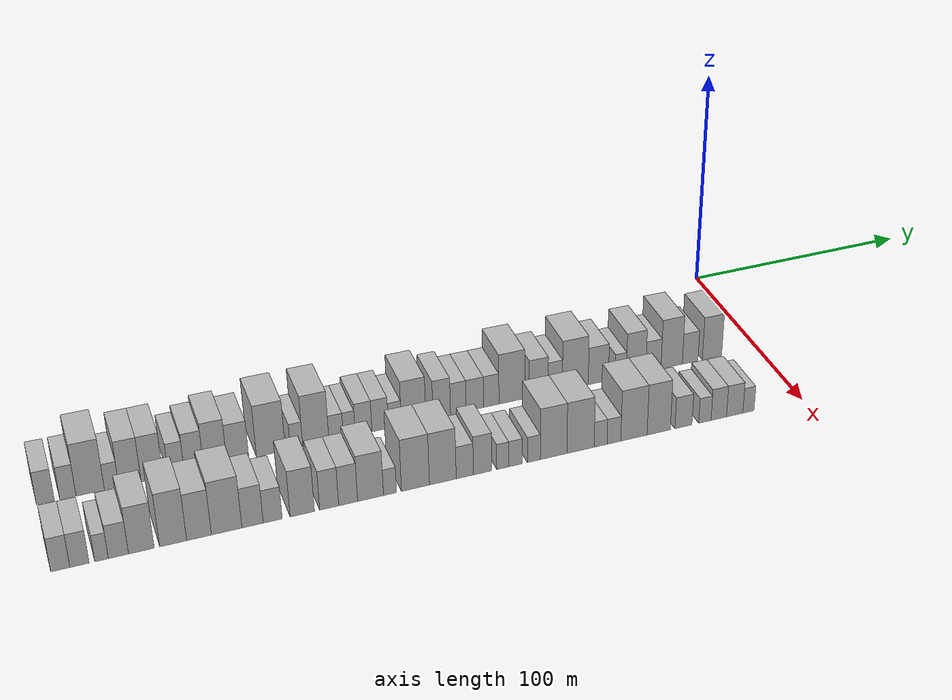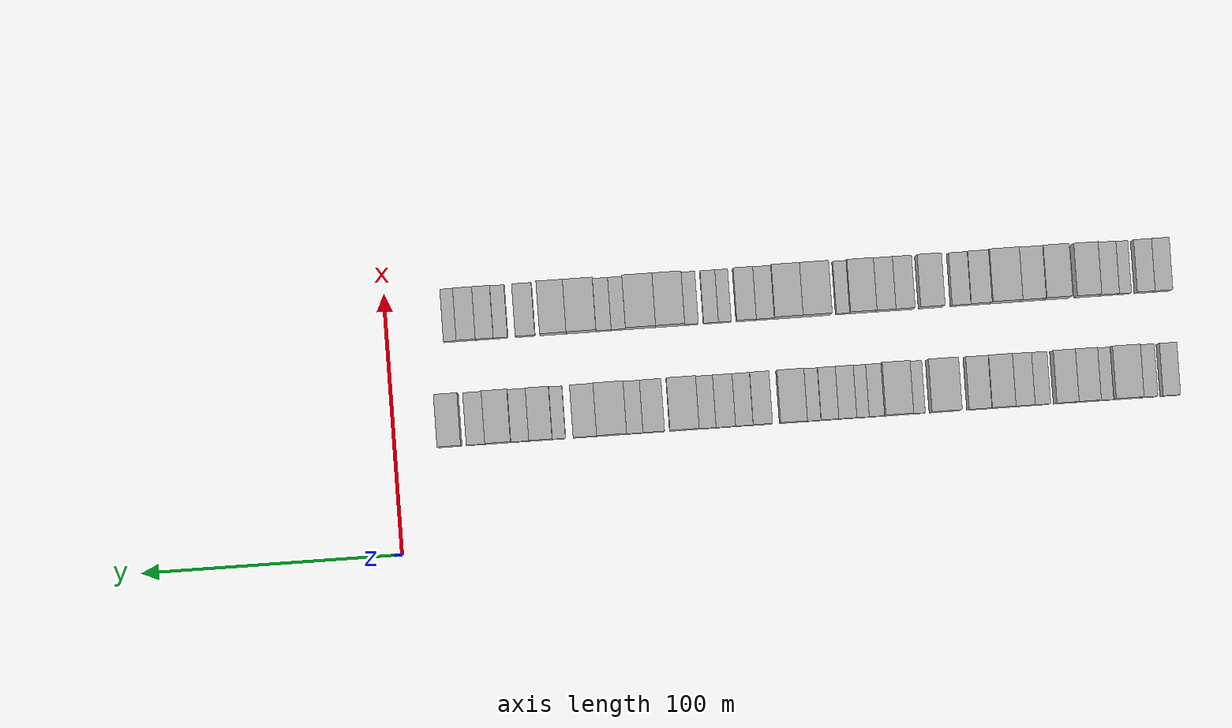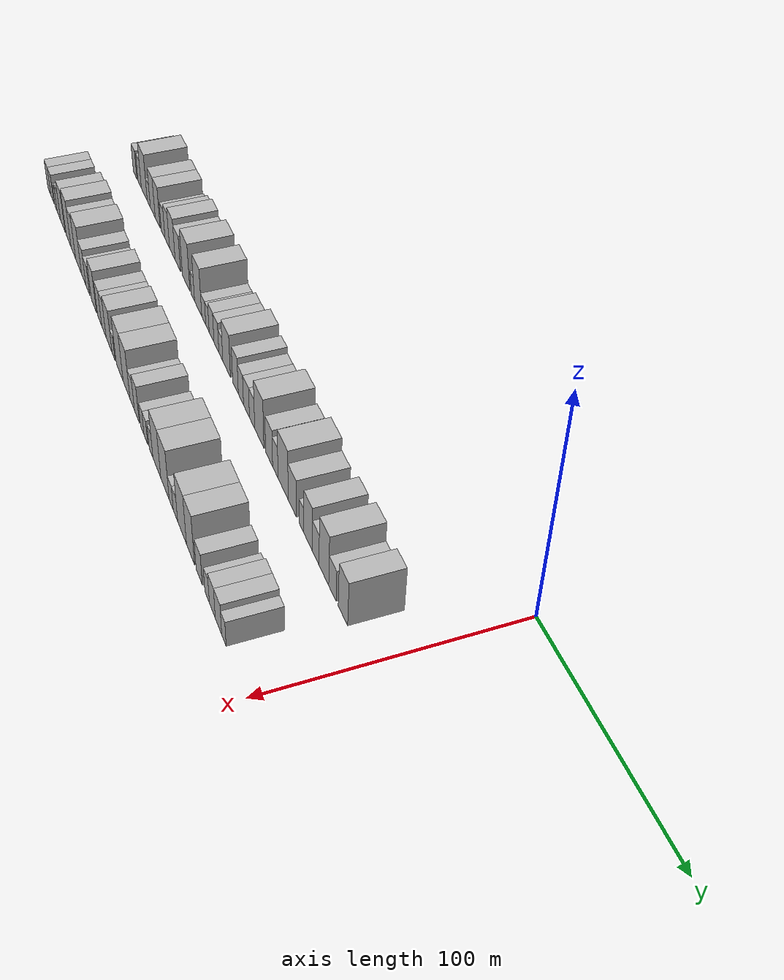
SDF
<sdf version="1.6">
 <world name="default">
  <model name="building_1">
   <static>1</static>
   <pose>50.0000 -296.6885 0 0.000000 0.000000 0.000000</pose>
   <link name="link">
    <pose>0 0 7.50 0 0 0</pose>
    <collision name="collision"><geometry><box><size>20.0000 6.6230 15.0000</size></box></geometry></collision>
    <visual name="visual">
     <cast_shadows>0</cast_shadows>
     <geometry><box><size>20.0000 6.6230 15.0000</size></box></geometry>
     <material>
      <script>
       <uri>model://HANNAS_wall/materials/scripts</uri>
       <uri>model://HANNAS_wall/materials/textures</uri>
       <name>vrc/HANNAS_wall</name>
      </script>
     </material>
    </visual>
   </link>
  </model>
  <model name="building_2">
   <static>1</static>
   <pose>50.0000 -288.3620 0 0.000000 0.000000 0.000000</pose>
   <link name="link">
    <pose>0 0 7.50 0 0 0</pose>
    <collision name="collision"><geometry><box><size>20.0000 6.0301 15.0000</size></box></geometry></collision>
    <visual name="visual">
     <cast_shadows>0</cast_shadows>
     <geometry><box><size>20.0000 6.0301 15.0000</size></box></geometry>
     <material>
      <script>
       <uri>model://HANNAS_wall/materials/scripts</uri>
       <uri>model://HANNAS_wall/materials/textures</uri>
       <name>vrc/HANNAS_wall</name>
      </script>
     </material>
    </visual>
   </link>
  </model>
  <model name="building_3">
   <static>1</static>
   <pose>50.0000 -280.0617 0 0.000000 0.000000 0.000000</pose>
   <link name="link">
    <pose>0 0 12.00 0 0 0</pose>
    <collision name="collision"><geometry><box><size>20.0000 10.5706 24.0000</size></box></geometry></collision>
    <visual name="visual">
     <cast_shadows>0</cast_shadows>
     <geometry><box><size>20.0000 10.5706 24.0000</size></box></geometry>
     <material>
      <script>
       <uri>model://HANNAS_wall/materials/scripts</uri>
       <uri>model://HANNAS_wall/materials/textures</uri>
       <name>vrc/HANNAS_wall</name>
      </script>
     </material>
    </visual>
   </link>
  </model>
  <model name="building_4">
   <static>1</static>
   <pose>50.0000 -272.0623 0 0.000000 0.000000 0.000000</pose>
   <link name="link">
    <pose>0 0 6.00 0 0 0</pose>
    <collision name="collision"><geometry><box><size>20.0000 5.4283 12.0000</size></box></geometry></collision>
    <visual name="visual">
     <cast_shadows>0</cast_shadows>
     <geometry><box><size>20.0000 5.4283 12.0000</size></box></geometry>
     <material>
      <script>
       <uri>model://HANNAS_wall/materials/scripts</uri>
       <uri>model://HANNAS_wall/materials/textures</uri>
       <name>vrc/HANNAS_wall</name>
      </script>
     </material>
    </visual>
   </link>
  </model>
  <model name="building_5">
   <static>1</static>
   <pose>50.0000 -265.1304 0 0.000000 0.000000 0.000000</pose>
   <link name="link">
    <pose>0 0 10.50 0 0 0</pose>
    <collision name="collision"><geometry><box><size>20.0000 8.4354 21.0000</size></box></geometry></collision>
    <visual name="visual">
     <cast_shadows>0</cast_shadows>
     <geometry><box><size>20.0000 8.4354 21.0000</size></box></geometry>
     <material>
      <script>
       <uri>model://HANNAS_wall/materials/scripts</uri>
       <uri>model://HANNAS_wall/materials/textures</uri>
       <name>vrc/HANNAS_wall</name>
      </script>
     </material>
    </visual>
   </link>
  </model>
  <model name="building_6">
   <static>1</static>
   <pose>50.0000 -256.7108 0 0.000000 0.000000 0.000000</pose>
   <link name="link">
    <pose>0 0 10.50 0 0 0</pose>
    <collision name="collision"><geometry><box><size>20.0000 8.4038 21.0000</size></box></geometry></collision>
    <visual name="visual">
     <cast_shadows>0</cast_shadows>
     <geometry><box><size>20.0000 8.4038 21.0000</size></box></geometry>
     <material>
      <script>
       <uri>model://HANNAS_wall/materials/scripts</uri>
       <uri>model://HANNAS_wall/materials/textures</uri>
       <name>vrc/HANNAS_wall</name>
      </script>
     </material>
    </visual>
   </link>
  </model>
  <model name="building_7">
   <static>1</static>
   <pose>50.0000 -247.4542 0 0.000000 0.000000 0.000000</pose>
   <link name="link">
    <pose>0 0 7.50 0 0 0</pose>
    <collision name="collision"><geometry><box><size>20.0000 6.1095 15.0000</size></box></geometry></collision>
    <visual name="visual">
     <cast_shadows>0</cast_shadows>
     <geometry><box><size>20.0000 6.1095 15.0000</size></box></geometry>
     <material>
      <script>
       <uri>model://HANNAS_wall/materials/scripts</uri>
       <uri>model://HANNAS_wall/materials/textures</uri>
       <name>vrc/HANNAS_wall</name>
      </script>
     </material>
    </visual>
   </link>
  </model>
  <model name="building_8">
   <static>1</static>
   <pose>50.0000 -240.6647 0 0.000000 0.000000 0.000000</pose>
   <link name="link">
    <pose>0 0 9.00 0 0 0</pose>
    <collision name="collision"><geometry><box><size>20.0000 7.4693 18.0000</size></box></geometry></collision>
    <visual name="visual">
     <cast_shadows>0</cast_shadows>
     <geometry><box><size>20.0000 7.4693 18.0000</size></box></geometry>
     <material>
      <script>
       <uri>model://HANNAS_wall/materials/scripts</uri>
       <uri>model://HANNAS_wall/materials/textures</uri>
       <name>vrc/HANNAS_wall</name>
      </script>
     </material>
    </visual>
   </link>
  </model>
  <model name="building_9">
   <static>1</static>
   <pose>50.0000 -232.4220 0 0.000000 0.000000 0.000000</pose>
   <link name="link">
    <pose>0 0 10.50 0 0 0</pose>
    <collision name="collision"><geometry><box><size>20.0000 9.0161 21.0000</size></box></geometry></collision>
    <visual name="visual">
     <cast_shadows>0</cast_shadows>
     <geometry><box><size>20.0000 9.0161 21.0000</size></box></geometry>
     <material>
      <script>
       <uri>model://HANNAS_wall/materials/scripts</uri>
       <uri>model://HANNAS_wall/materials/textures</uri>
       <name>vrc/HANNAS_wall</name>
      </script>
     </material>
    </visual>
   </link>
  </model>
  <model name="building_10">
   <static>1</static>
   <pose>50.0000 -223.6112 0 0.000000 0.000000 0.000000</pose>
   <link name="link">
    <pose>0 0 9.00 0 0 0</pose>
    <collision name="collision"><geometry><box><size>20.0000 8.6056 18.0000</size></box></geometry></collision>
    <visual name="visual">
     <cast_shadows>0</cast_shadows>
     <geometry><box><size>20.0000 8.6056 18.0000</size></box></geometry>
     <material>
      <script>
       <uri>model://HANNAS_wall/materials/scripts</uri>
       <uri>model://HANNAS_wall/materials/textures</uri>
       <name>vrc/HANNAS_wall</name>
      </script>
     </material>
    </visual>
   </link>
  </model>
  <model name="building_11">
   <static>1</static>
   <pose>50.0000 -210.5880 0 0.000000 0.000000 0.000000</pose>
   <link name="link">
    <pose>0 0 12.00 0 0 0</pose>
    <collision name="collision"><geometry><box><size>20.0000 11.4408 24.0000</size></box></geometry></collision>
    <visual name="visual">
     <cast_shadows>0</cast_shadows>
     <geometry><box><size>20.0000 11.4408 24.0000</size></box></geometry>
     <material>
      <script>
       <uri>model://HANNAS_wall/materials/scripts</uri>
       <uri>model://HANNAS_wall/materials/textures</uri>
       <name>vrc/HANNAS_wall</name>
      </script>
     </material>
    </visual>
   </link>
  </model>
  <model name="building_12">
   <static>1</static>
   <pose>50.0000 -200.3734 0 0.000000 0.000000 0.000000</pose>
   <link name="link">
    <pose>0 0 6.00 0 0 0</pose>
    <collision name="collision"><geometry><box><size>20.0000 4.9884 12.0000</size></box></geometry></collision>
    <visual name="visual">
     <cast_shadows>0</cast_shadows>
     <geometry><box><size>20.0000 4.9884 12.0000</size></box></geometry>
     <material>
      <script>
       <uri>model://HANNAS_wall/materials/scripts</uri>
       <uri>model://HANNAS_wall/materials/textures</uri>
       <name>vrc/HANNAS_wall</name>
      </script>
     </material>
    </visual>
   </link>
  </model>
  <model name="building_13">
   <static>1</static>
   <pose>50.0000 -192.5975 0 0.000000 0.000000 0.000000</pose>
   <link name="link">
    <pose>0 0 12.00 0 0 0</pose>
    <collision name="collision"><geometry><box><size>20.0000 10.5634 24.0000</size></box></geometry></collision>
    <visual name="visual">
     <cast_shadows>0</cast_shadows>
     <geometry><box><size>20.0000 10.5634 24.0000</size></box></geometry>
     <material>
      <script>
       <uri>model://HANNAS_wall/materials/scripts</uri>
       <uri>model://HANNAS_wall/materials/textures</uri>
       <name>vrc/HANNAS_wall</name>
      </script>
     </material>
    </visual>
   </link>
  </model>
  <model name="building_14">
   <static>1</static>
   <pose>50.0000 -184.3863 0 0.000000 0.000000 0.000000</pose>
   <link name="link">
    <pose>0 0 6.00 0 0 0</pose>
    <collision name="collision"><geometry><box><size>20.0000 5.8589 12.0000</size></box></geometry></collision>
    <visual name="visual">
     <cast_shadows>0</cast_shadows>
     <geometry><box><size>20.0000 5.8589 12.0000</size></box></geometry>
     <material>
      <script>
       <uri>model://HANNAS_wall/materials/scripts</uri>
       <uri>model://HANNAS_wall/materials/textures</uri>
       <name>vrc/HANNAS_wall</name>
      </script>
     </material>
    </visual>
   </link>
  </model>
  <model name="building_15">
   <static>1</static>
   <pose>50.0000 -179.0469 0 0.000000 0.000000 0.000000</pose>
   <link name="link">
    <pose>0 0 6.00 0 0 0</pose>
    <collision name="collision"><geometry><box><size>20.0000 4.8199 12.0000</size></box></geometry></collision>
    <visual name="visual">
     <cast_shadows>0</cast_shadows>
     <geometry><box><size>20.0000 4.8199 12.0000</size></box></geometry>
     <material>
      <script>
       <uri>model://HANNAS_wall/materials/scripts</uri>
       <uri>model://HANNAS_wall/materials/textures</uri>
       <name>vrc/HANNAS_wall</name>
      </script>
     </material>
    </visual>
   </link>
  </model>
  <model name="building_16">
   <static>1</static>
   <pose>50.0000 -173.2022 0 0.000000 0.000000 0.000000</pose>
   <link name="link">
    <pose>0 0 7.50 0 0 0</pose>
    <collision name="collision"><geometry><box><size>20.0000 6.8695 15.0000</size></box></geometry></collision>
    <visual name="visual">
     <cast_shadows>0</cast_shadows>
     <geometry><box><size>20.0000 6.8695 15.0000</size></box></geometry>
     <material>
      <script>
       <uri>model://HANNAS_wall/materials/scripts</uri>
       <uri>model://HANNAS_wall/materials/textures</uri>
       <name>vrc/HANNAS_wall</name>
      </script>
     </material>
    </visual>
   </link>
  </model>
  <model name="building_17">
   <static>1</static>
   <pose>50.0000 -166.3987 0 0.000000 0.000000 0.000000</pose>
   <link name="link">
    <pose>0 0 7.50 0 0 0</pose>
    <collision name="collision"><geometry><box><size>20.0000 6.7375 15.0000</size></box></geometry></collision>
    <visual name="visual">
     <cast_shadows>0</cast_shadows>
     <geometry><box><size>20.0000 6.7375 15.0000</size></box></geometry>
     <material>
      <script>
       <uri>model://HANNAS_wall/materials/scripts</uri>
       <uri>model://HANNAS_wall/materials/textures</uri>
       <name>vrc/HANNAS_wall</name>
      </script>
     </material>
    </visual>
   </link>
  </model>
  <model name="building_18">
   <static>1</static>
   <pose>50.0000 -160.3382 0 0.000000 0.000000 0.000000</pose>
   <link name="link">
    <pose>0 0 6.00 0 0 0</pose>
    <collision name="collision"><geometry><box><size>20.0000 5.3836 12.0000</size></box></geometry></collision>
    <visual name="visual">
     <cast_shadows>0</cast_shadows>
     <geometry><box><size>20.0000 5.3836 12.0000</size></box></geometry>
     <material>
      <script>
       <uri>model://HANNAS_wall/materials/scripts</uri>
       <uri>model://HANNAS_wall/materials/textures</uri>
       <name>vrc/HANNAS_wall</name>
      </script>
     </material>
    </visual>
   </link>
  </model>
  <model name="building_19">
   <static>1</static>
   <pose>50.0000 -152.5379 0 0.000000 0.000000 0.000000</pose>
   <link name="link">
    <pose>0 0 10.50 0 0 0</pose>
    <collision name="collision"><geometry><box><size>20.0000 10.2169 21.0000</size></box></geometry></collision>
    <visual name="visual">
     <cast_shadows>0</cast_shadows>
     <geometry><box><size>20.0000 10.2169 21.0000</size></box></geometry>
     <material>
      <script>
       <uri>model://HANNAS_wall/materials/scripts</uri>
       <uri>model://HANNAS_wall/materials/textures</uri>
       <name>vrc/HANNAS_wall</name>
      </script>
     </material>
    </visual>
   </link>
  </model>
  <model name="building_20">
   <static>1</static>
   <pose>50.0000 -140.7520 0 0.000000 0.000000 0.000000</pose>
   <link name="link">
    <pose>0 0 9.00 0 0 0</pose>
    <collision name="collision"><geometry><box><size>20.0000 7.3550 18.0000</size></box></geometry></collision>
    <visual name="visual">
     <cast_shadows>0</cast_shadows>
     <geometry><box><size>20.0000 7.3550 18.0000</size></box></geometry>
     <material>
      <script>
       <uri>model://HANNAS_wall/materials/scripts</uri>
       <uri>model://HANNAS_wall/materials/textures</uri>
       <name>vrc/HANNAS_wall</name>
      </script>
     </material>
    </visual>
   </link>
  </model>
  <model name="building_21">
   <static>1</static>
   <pose>50.0000 -133.7475 0 0.000000 0.000000 0.000000</pose>
   <link name="link">
    <pose>0 0 7.50 0 0 0</pose>
    <collision name="collision"><geometry><box><size>20.0000 6.6540 15.0000</size></box></geometry></collision>
    <visual name="visual">
     <cast_shadows>0</cast_shadows>
     <geometry><box><size>20.0000 6.6540 15.0000</size></box></geometry>
     <material>
      <script>
       <uri>model://HANNAS_wall/materials/scripts</uri>
       <uri>model://HANNAS_wall/materials/textures</uri>
       <name>vrc/HANNAS_wall</name>
      </script>
     </material>
    </visual>
   </link>
  </model>
  <model name="building_22">
   <static>1</static>
   <pose>50.0000 -126.6959 0 0.000000 0.000000 0.000000</pose>
   <link name="link">
    <pose>0 0 7.50 0 0 0</pose>
    <collision name="collision"><geometry><box><size>20.0000 7.4490 15.0000</size></box></geometry></collision>
    <visual name="visual">
     <cast_shadows>0</cast_shadows>
     <geometry><box><size>20.0000 7.4490 15.0000</size></box></geometry>
     <material>
      <script>
       <uri>model://HANNAS_wall/materials/scripts</uri>
       <uri>model://HANNAS_wall/materials/textures</uri>
       <name>vrc/HANNAS_wall</name>
      </script>
     </material>
    </visual>
   </link>
  </model>
  <model name="building_23">
   <static>1</static>
   <pose>50.0000 -119.7036 0 0.000000 0.000000 0.000000</pose>
   <link name="link">
    <pose>0 0 7.50 0 0 0</pose>
    <collision name="collision"><geometry><box><size>20.0000 6.5356 15.0000</size></box></geometry></collision>
    <visual name="visual">
     <cast_shadows>0</cast_shadows>
     <geometry><box><size>20.0000 6.5356 15.0000</size></box></geometry>
     <material>
      <script>
       <uri>model://HANNAS_wall/materials/scripts</uri>
       <uri>model://HANNAS_wall/materials/textures</uri>
       <name>vrc/HANNAS_wall</name>
      </script>
     </material>
    </visual>
   </link>
  </model>
  <model name="building_24">
   <static>1</static>
   <pose>50.0000 -110.8735 0 0.000000 0.000000 0.000000</pose>
   <link name="link">
    <pose>0 0 12.00 0 0 0</pose>
    <collision name="collision"><geometry><box><size>20.0000 11.1247 24.0000</size></box></geometry></collision>
    <visual name="visual">
     <cast_shadows>0</cast_shadows>
     <geometry><box><size>20.0000 11.1247 24.0000</size></box></geometry>
     <material>
      <script>
       <uri>model://HANNAS_wall/materials/scripts</uri>
       <uri>model://HANNAS_wall/materials/textures</uri>
       <name>vrc/HANNAS_wall</name>
      </script>
     </material>
    </visual>
   </link>
  </model>
  <model name="building_25">
   <static>1</static>
   <pose>50.0000 -99.2027 0 0.000000 0.000000 0.000000</pose>
   <link name="link">
    <pose>0 0 9.00 0 0 0</pose>
    <collision name="collision"><geometry><box><size>20.0000 8.2169 18.0000</size></box></geometry></collision>
    <visual name="visual">
     <cast_shadows>0</cast_shadows>
     <geometry><box><size>20.0000 8.2169 18.0000</size></box></geometry>
     <material>
      <script>
       <uri>model://HANNAS_wall/materials/scripts</uri>
       <uri>model://HANNAS_wall/materials/textures</uri>
       <name>vrc/HANNAS_wall</name>
      </script>
     </material>
    </visual>
   </link>
  </model>
  <model name="building_26">
   <static>1</static>
   <pose>50.0000 -91.9882 0 0.000000 0.000000 0.000000</pose>
   <link name="link">
    <pose>0 0 7.50 0 0 0</pose>
    <collision name="collision"><geometry><box><size>20.0000 6.2121 15.0000</size></box></geometry></collision>
    <visual name="visual">
     <cast_shadows>0</cast_shadows>
     <geometry><box><size>20.0000 6.2121 15.0000</size></box></geometry>
     <material>
      <script>
       <uri>model://HANNAS_wall/materials/scripts</uri>
       <uri>model://HANNAS_wall/materials/textures</uri>
       <name>vrc/HANNAS_wall</name>
      </script>
     </material>
    </visual>
   </link>
  </model>
  <model name="building_27">
   <static>1</static>
   <pose>50.0000 -83.1758 0 0.000000 0.000000 0.000000</pose>
   <link name="link">
    <pose>0 0 12.00 0 0 0</pose>
    <collision name="collision"><geometry><box><size>20.0000 11.4127 24.0000</size></box></geometry></collision>
    <visual name="visual">
     <cast_shadows>0</cast_shadows>
     <geometry><box><size>20.0000 11.4127 24.0000</size></box></geometry>
     <material>
      <script>
       <uri>model://HANNAS_wall/materials/scripts</uri>
       <uri>model://HANNAS_wall/materials/textures</uri>
       <name>vrc/HANNAS_wall</name>
      </script>
     </material>
    </visual>
   </link>
  </model>
  <model name="building_28">
   <static>1</static>
   <pose>50.0000 -72.9829 0 0.000000 0.000000 0.000000</pose>
   <link name="link">
    <pose>0 0 9.00 0 0 0</pose>
    <collision name="collision"><geometry><box><size>20.0000 8.9731 18.0000</size></box></geometry></collision>
    <visual name="visual">
     <cast_shadows>0</cast_shadows>
     <geometry><box><size>20.0000 8.9731 18.0000</size></box></geometry>
     <material>
      <script>
       <uri>model://HANNAS_wall/materials/scripts</uri>
       <uri>model://HANNAS_wall/materials/textures</uri>
       <name>vrc/HANNAS_wall</name>
      </script>
     </material>
    </visual>
   </link>
  </model>
  <model name="building_29">
   <static>1</static>
   <pose>50.0000 -63.0117 0 0.000000 0.000000 0.000000</pose>
   <link name="link">
    <pose>0 0 6.00 0 0 0</pose>
    <collision name="collision"><geometry><box><size>20.0000 4.9692 12.0000</size></box></geometry></collision>
    <visual name="visual">
     <cast_shadows>0</cast_shadows>
     <geometry><box><size>20.0000 4.9692 12.0000</size></box></geometry>
     <material>
      <script>
       <uri>model://HANNAS_wall/materials/scripts</uri>
       <uri>model://HANNAS_wall/materials/textures</uri>
       <name>vrc/HANNAS_wall</name>
      </script>
     </material>
    </visual>
   </link>
  </model>
  <model name="building_30">
   <static>1</static>
   <pose>50.0000 -56.1043 0 0.000000 0.000000 0.000000</pose>
   <link name="link">
    <pose>0 0 10.50 0 0 0</pose>
    <collision name="collision"><geometry><box><size>20.0000 8.8454 21.0000</size></box></geometry></collision>
    <visual name="visual">
     <cast_shadows>0</cast_shadows>
     <geometry><box><size>20.0000 8.8454 21.0000</size></box></geometry>
     <material>
      <script>
       <uri>model://HANNAS_wall/materials/scripts</uri>
       <uri>model://HANNAS_wall/materials/textures</uri>
       <name>vrc/HANNAS_wall</name>
      </script>
     </material>
    </visual>
   </link>
  </model>
  <model name="building_31">
   <static>1</static>
   <pose>50.0000 -48.2163 0 0.000000 0.000000 0.000000</pose>
   <link name="link">
    <pose>0 0 7.50 0 0 0</pose>
    <collision name="collision"><geometry><box><size>20.0000 6.9306 15.0000</size></box></geometry></collision>
    <visual name="visual">
     <cast_shadows>0</cast_shadows>
     <geometry><box><size>20.0000 6.9306 15.0000</size></box></geometry>
     <material>
      <script>
       <uri>model://HANNAS_wall/materials/scripts</uri>
       <uri>model://HANNAS_wall/materials/textures</uri>
       <name>vrc/HANNAS_wall</name>
      </script>
     </material>
    </visual>
   </link>
  </model>
  <model name="building_32">
   <static>1</static>
   <pose>50.0000 -39.8728 0 0.000000 0.000000 0.000000</pose>
   <link name="link">
    <pose>0 0 12.00 0 0 0</pose>
    <collision name="collision"><geometry><box><size>20.0000 9.7566 24.0000</size></box></geometry></collision>
    <visual name="visual">
     <cast_shadows>0</cast_shadows>
     <geometry><box><size>20.0000 9.7566 24.0000</size></box></geometry>
     <material>
      <script>
       <uri>model://HANNAS_wall/materials/scripts</uri>
       <uri>model://HANNAS_wall/materials/textures</uri>
       <name>vrc/HANNAS_wall</name>
      </script>
     </material>
    </visual>
   </link>
  </model>
  <model name="building_33">
   <static>1</static>
   <pose>50.0000 -31.3710 0 0.000000 0.000000 0.000000</pose>
   <link name="link">
    <pose>0 0 7.50 0 0 0</pose>
    <collision name="collision"><geometry><box><size>20.0000 7.2471 15.0000</size></box></geometry></collision>
    <visual name="visual">
     <cast_shadows>0</cast_shadows>
     <geometry><box><size>20.0000 7.2471 15.0000</size></box></geometry>
     <material>
      <script>
       <uri>model://HANNAS_wall/materials/scripts</uri>
       <uri>model://HANNAS_wall/materials/textures</uri>
       <name>vrc/HANNAS_wall</name>
      </script>
     </material>
    </visual>
   </link>
  </model>
  <model name="building_34">
   <static>1</static>
   <pose>50.0000 -21.2676 0 0.000000 0.000000 0.000000</pose>
   <link name="link">
    <pose>0 0 10.50 0 0 0</pose>
    <collision name="collision"><geometry><box><size>20.0000 8.9597 21.0000</size></box></geometry></collision>
    <visual name="visual">
     <cast_shadows>0</cast_shadows>
     <geometry><box><size>20.0000 8.9597 21.0000</size></box></geometry>
     <material>
      <script>
       <uri>model://HANNAS_wall/materials/scripts</uri>
       <uri>model://HANNAS_wall/materials/textures</uri>
       <name>vrc/HANNAS_wall</name>
      </script>
     </material>
    </visual>
   </link>
  </model>
  <model name="building_70">
   <static>1</static>
   <pose>90.0000 -296.6307 0 0.000000 0.000000 0.000000</pose>
   <link name="link">
    <pose>0 0 7.50 0 0 0</pose>
    <collision name="collision"><geometry><box><size>20.0000 6.7386 15.0000</size></box></geometry></collision>
    <visual name="visual">
     <cast_shadows>0</cast_shadows>
     <geometry><box><size>20.0000 6.7386 15.0000</size></box></geometry>
     <material>
      <script>
       <uri>model://HANNAS_wall/materials/scripts</uri>
       <uri>model://HANNAS_wall/materials/textures</uri>
       <name>vrc/HANNAS_wall</name>
      </script>
     </material>
    </visual>
   </link>
  </model>
  <model name="building_71">
   <static>1</static>
   <pose>90.0000 -289.8558 0 0.000000 0.000000 0.000000</pose>
   <link name="link">
    <pose>0 0 7.50 0 0 0</pose>
    <collision name="collision"><geometry><box><size>20.0000 6.8113 15.0000</size></box></geometry></collision>
    <visual name="visual">
     <cast_shadows>0</cast_shadows>
     <geometry><box><size>20.0000 6.8113 15.0000</size></box></geometry>
     <material>
      <script>
       <uri>model://HANNAS_wall/materials/scripts</uri>
       <uri>model://HANNAS_wall/materials/textures</uri>
       <name>vrc/HANNAS_wall</name>
      </script>
     </material>
    </visual>
   </link>
  </model>
  <model name="building_72">
   <static>1</static>
   <pose>90.0000 -282.0487 0 0.000000 0.000000 0.000000</pose>
   <link name="link">
    <pose>0 0 6.00 0 0 0</pose>
    <collision name="collision"><geometry><box><size>20.0000 4.8029 12.0000</size></box></geometry></collision>
    <visual name="visual">
     <cast_shadows>0</cast_shadows>
     <geometry><box><size>20.0000 4.8029 12.0000</size></box></geometry>
     <material>
      <script>
       <uri>model://HANNAS_wall/materials/scripts</uri>
       <uri>model://HANNAS_wall/materials/textures</uri>
       <name>vrc/HANNAS_wall</name>
      </script>
     </material>
    </visual>
   </link>
  </model>
  <model name="building_73">
   <static>1</static>
   <pose>90.0000 -276.0375 0 0.000000 0.000000 0.000000</pose>
   <link name="link">
    <pose>0 0 7.50 0 0 0</pose>
    <collision name="collision"><geometry><box><size>20.0000 7.2195 15.0000</size></box></geometry></collision>
    <visual name="visual">
     <cast_shadows>0</cast_shadows>
     <geometry><box><size>20.0000 7.2195 15.0000</size></box></geometry>
     <material>
      <script>
       <uri>model://HANNAS_wall/materials/scripts</uri>
       <uri>model://HANNAS_wall/materials/textures</uri>
       <name>vrc/HANNAS_wall</name>
      </script>
     </material>
    </visual>
   </link>
  </model>
  <model name="building_74">
   <static>1</static>
   <pose>90.0000 -267.8022 0 0.000000 0.000000 0.000000</pose>
   <link name="link">
    <pose>0 0 10.50 0 0 0</pose>
    <collision name="collision"><geometry><box><size>20.0000 9.2510 21.0000</size></box></geometry></collision>
    <visual name="visual">
     <cast_shadows>0</cast_shadows>
     <geometry><box><size>20.0000 9.2510 21.0000</size></box></geometry>
     <material>
      <script>
       <uri>model://HANNAS_wall/materials/scripts</uri>
       <uri>model://HANNAS_wall/materials/textures</uri>
       <name>vrc/HANNAS_wall</name>
      </script>
     </material>
    </visual>
   </link>
  </model>
  <model name="building_75">
   <static>1</static>
   <pose>90.0000 -256.2626 0 0.000000 0.000000 0.000000</pose>
   <link name="link">
    <pose>0 0 12.00 0 0 0</pose>
    <collision name="collision"><geometry><box><size>20.0000 9.8283 24.0000</size></box></geometry></collision>
    <visual name="visual">
     <cast_shadows>0</cast_shadows>
     <geometry><box><size>20.0000 9.8283 24.0000</size></box></geometry>
     <material>
      <script>
       <uri>model://HANNAS_wall/materials/scripts</uri>
       <uri>model://HANNAS_wall/materials/textures</uri>
       <name>vrc/HANNAS_wall</name>
      </script>
     </material>
    </visual>
   </link>
  </model>
  <model name="building_76">
   <static>1</static>
   <pose>90.0000 -246.8110 0 0.000000 0.000000 0.000000</pose>
   <link name="link">
    <pose>0 0 10.50 0 0 0</pose>
    <collision name="collision"><geometry><box><size>20.0000 9.0748 21.0000</size></box></geometry></collision>
    <visual name="visual">
     <cast_shadows>0</cast_shadows>
     <geometry><box><size>20.0000 9.0748 21.0000</size></box></geometry>
     <material>
      <script>
       <uri>model://HANNAS_wall/materials/scripts</uri>
       <uri>model://HANNAS_wall/materials/textures</uri>
       <name>vrc/HANNAS_wall</name>
      </script>
     </material>
    </visual>
   </link>
  </model>
  <model name="building_77">
   <static>1</static>
   <pose>90.0000 -236.6115 0 0.000000 0.000000 0.000000</pose>
   <link name="link">
    <pose>0 0 12.00 0 0 0</pose>
    <collision name="collision"><geometry><box><size>20.0000 11.3241 24.0000</size></box></geometry></collision>
    <visual name="visual">
     <cast_shadows>0</cast_shadows>
     <geometry><box><size>20.0000 11.3241 24.0000</size></box></geometry>
     <material>
      <script>
       <uri>model://HANNAS_wall/materials/scripts</uri>
       <uri>model://HANNAS_wall/materials/textures</uri>
       <name>vrc/HANNAS_wall</name>
      </script>
     </material>
    </visual>
   </link>
  </model>
  <model name="building_78">
   <static>1</static>
   <pose>90.0000 -226.9685 0 0.000000 0.000000 0.000000</pose>
   <link name="link">
    <pose>0 0 9.00 0 0 0</pose>
    <collision name="collision"><geometry><box><size>20.0000 7.9618 18.0000</size></box></geometry></collision>
    <visual name="visual">
     <cast_shadows>0</cast_shadows>
     <geometry><box><size>20.0000 7.9618 18.0000</size></box></geometry>
     <material>
      <script>
       <uri>model://HANNAS_wall/materials/scripts</uri>
       <uri>model://HANNAS_wall/materials/textures</uri>
       <name>vrc/HANNAS_wall</name>
      </script>
     </material>
    </visual>
   </link>
  </model>
  <model name="building_79">
   <static>1</static>
   <pose>90.0000 -219.4163 0 0.000000 0.000000 0.000000</pose>
   <link name="link">
    <pose>0 0 7.50 0 0 0</pose>
    <collision name="collision"><geometry><box><size>20.0000 7.1426 15.0000</size></box></geometry></collision>
    <visual name="visual">
     <cast_shadows>0</cast_shadows>
     <geometry><box><size>20.0000 7.1426 15.0000</size></box></geometry>
     <material>
      <script>
       <uri>model://HANNAS_wall/materials/scripts</uri>
       <uri>model://HANNAS_wall/materials/textures</uri>
       <name>vrc/HANNAS_wall</name>
      </script>
     </material>
    </visual>
   </link>
  </model>
  <model name="building_80">
   <static>1</static>
   <pose>90.0000 -208.2150 0 0.000000 0.000000 0.000000</pose>
   <link name="link">
    <pose>0 0 10.50 0 0 0</pose>
    <collision name="collision"><geometry><box><size>20.0000 9.2599 21.0000</size></box></geometry></collision>
    <visual name="visual">
     <cast_shadows>0</cast_shadows>
     <geometry><box><size>20.0000 9.2599 21.0000</size></box></geometry>
     <material>
      <script>
       <uri>model://HANNAS_wall/materials/scripts</uri>
       <uri>model://HANNAS_wall/materials/textures</uri>
       <name>vrc/HANNAS_wall</name>
      </script>
     </material>
    </visual>
   </link>
  </model>
  <model name="building_81">
   <static>1</static>
   <pose>90.0000 -197.9384 0 0.000000 0.000000 0.000000</pose>
   <link name="link">
    <pose>0 0 9.00 0 0 0</pose>
    <collision name="collision"><geometry><box><size>20.0000 7.2932 18.0000</size></box></geometry></collision>
    <visual name="visual">
     <cast_shadows>0</cast_shadows>
     <geometry><box><size>20.0000 7.2932 18.0000</size></box></geometry>
     <material>
      <script>
       <uri>model://HANNAS_wall/materials/scripts</uri>
       <uri>model://HANNAS_wall/materials/textures</uri>
       <name>vrc/HANNAS_wall</name>
      </script>
     </material>
    </visual>
   </link>
  </model>
  <model name="building_82">
   <static>1</static>
   <pose>90.0000 -190.6180 0 0.000000 0.000000 0.000000</pose>
   <link name="link">
    <pose>0 0 9.00 0 0 0</pose>
    <collision name="collision"><geometry><box><size>20.0000 7.3476 18.0000</size></box></geometry></collision>
    <visual name="visual">
     <cast_shadows>0</cast_shadows>
     <geometry><box><size>20.0000 7.3476 18.0000</size></box></geometry>
     <material>
      <script>
       <uri>model://HANNAS_wall/materials/scripts</uri>
       <uri>model://HANNAS_wall/materials/textures</uri>
       <name>vrc/HANNAS_wall</name>
      </script>
     </material>
    </visual>
   </link>
  </model>
  <model name="building_83">
   <static>1</static>
   <pose>90.0000 -181.9097 0 0.000000 0.000000 0.000000</pose>
   <link name="link">
    <pose>0 0 10.50 0 0 0</pose>
    <collision name="collision"><geometry><box><size>20.0000 10.0691 21.0000</size></box></geometry></collision>
    <visual name="visual">
     <cast_shadows>0</cast_shadows>
     <geometry><box><size>20.0000 10.0691 21.0000</size></box></geometry>
     <material>
      <script>
       <uri>model://HANNAS_wall/materials/scripts</uri>
       <uri>model://HANNAS_wall/materials/textures</uri>
       <name>vrc/HANNAS_wall</name>
      </script>
     </material>
    </visual>
   </link>
  </model>
  <model name="building_84">
   <static>1</static>
   <pose>90.0000 -174.3367 0 0.000000 0.000000 0.000000</pose>
   <link name="link">
    <pose>0 0 6.00 0 0 0</pose>
    <collision name="collision"><geometry><box><size>20.0000 5.0769 12.0000</size></box></geometry></collision>
    <visual name="visual">
     <cast_shadows>0</cast_shadows>
     <geometry><box><size>20.0000 5.0769 12.0000</size></box></geometry>
     <material>
      <script>
       <uri>model://HANNAS_wall/materials/scripts</uri>
       <uri>model://HANNAS_wall/materials/textures</uri>
       <name>vrc/HANNAS_wall</name>
      </script>
     </material>
    </visual>
   </link>
  </model>
  <model name="building_85">
   <static>1</static>
   <pose>90.0000 -164.2686 0 0.000000 0.000000 0.000000</pose>
   <link name="link">
    <pose>0 0 12.00 0 0 0</pose>
    <collision name="collision"><geometry><box><size>20.0000 11.0592 24.0000</size></box></geometry></collision>
    <visual name="visual">
     <cast_shadows>0</cast_shadows>
     <geometry><box><size>20.0000 11.0592 24.0000</size></box></geometry>
     <material>
      <script>
       <uri>model://HANNAS_wall/materials/scripts</uri>
       <uri>model://HANNAS_wall/materials/textures</uri>
       <name>vrc/HANNAS_wall</name>
      </script>
     </material>
    </visual>
   </link>
  </model>
  <model name="building_86">
   <static>1</static>
   <pose>90.0000 -153.3860 0 0.000000 0.000000 0.000000</pose>
   <link name="link">
    <pose>0 0 12.00 0 0 0</pose>
    <collision name="collision"><geometry><box><size>20.0000 10.7061 24.0000</size></box></geometry></collision>
    <visual name="visual">
     <cast_shadows>0</cast_shadows>
     <geometry><box><size>20.0000 10.7061 24.0000</size></box></geometry>
     <material>
      <script>
       <uri>model://HANNAS_wall/materials/scripts</uri>
       <uri>model://HANNAS_wall/materials/textures</uri>
       <name>vrc/HANNAS_wall</name>
      </script>
     </material>
    </visual>
   </link>
  </model>
  <model name="building_87">
   <static>1</static>
   <pose>90.0000 -144.5620 0 0.000000 0.000000 0.000000</pose>
   <link name="link">
    <pose>0 0 7.50 0 0 0</pose>
    <collision name="collision"><geometry><box><size>20.0000 6.9418 15.0000</size></box></geometry></collision>
    <visual name="visual">
     <cast_shadows>0</cast_shadows>
     <geometry><box><size>20.0000 6.9418 15.0000</size></box></geometry>
     <material>
      <script>
       <uri>model://HANNAS_wall/materials/scripts</uri>
       <uri>model://HANNAS_wall/materials/textures</uri>
       <name>vrc/HANNAS_wall</name>
      </script>
     </material>
    </visual>
   </link>
  </model>
  <model name="building_88">
   <static>1</static>
   <pose>90.0000 -137.3654 0 0.000000 0.000000 0.000000</pose>
   <link name="link">
    <pose>0 0 9.00 0 0 0</pose>
    <collision name="collision"><geometry><box><size>20.0000 7.4514 18.0000</size></box></geometry></collision>
    <visual name="visual">
     <cast_shadows>0</cast_shadows>
     <geometry><box><size>20.0000 7.4514 18.0000</size></box></geometry>
     <material>
      <script>
       <uri>model://HANNAS_wall/materials/scripts</uri>
       <uri>model://HANNAS_wall/materials/textures</uri>
       <name>vrc/HANNAS_wall</name>
      </script>
     </material>
    </visual>
   </link>
  </model>
  <model name="building_89">
   <static>1</static>
   <pose>90.0000 -129.1902 0 0.000000 0.000000 0.000000</pose>
   <link name="link">
    <pose>0 0 6.00 0 0 0</pose>
    <collision name="collision"><geometry><box><size>20.0000 4.8990 12.0000</size></box></geometry></collision>
    <visual name="visual">
     <cast_shadows>0</cast_shadows>
     <geometry><box><size>20.0000 4.8990 12.0000</size></box></geometry>
     <material>
      <script>
       <uri>model://HANNAS_wall/materials/scripts</uri>
       <uri>model://HANNAS_wall/materials/textures</uri>
       <name>vrc/HANNAS_wall</name>
      </script>
     </material>
    </visual>
   </link>
  </model>
  <model name="building_90">
   <static>1</static>
   <pose>90.0000 -123.9131 0 0.000000 0.000000 0.000000</pose>
   <link name="link">
    <pose>0 0 6.00 0 0 0</pose>
    <collision name="collision"><geometry><box><size>20.0000 5.6553 12.0000</size></box></geometry></collision>
    <visual name="visual">
     <cast_shadows>0</cast_shadows>
     <geometry><box><size>20.0000 5.6553 12.0000</size></box></geometry>
     <material>
      <script>
       <uri>model://HANNAS_wall/materials/scripts</uri>
       <uri>model://HANNAS_wall/materials/textures</uri>
       <name>vrc/HANNAS_wall</name>
      </script>
     </material>
    </visual>
   </link>
  </model>
  <model name="building_91">
   <static>1</static>
   <pose>90.0000 -116.4222 0 0.000000 0.000000 0.000000</pose>
   <link name="link">
    <pose>0 0 6.00 0 0 0</pose>
    <collision name="collision"><geometry><box><size>20.0000 5.3264 12.0000</size></box></geometry></collision>
    <visual name="visual">
     <cast_shadows>0</cast_shadows>
     <geometry><box><size>20.0000 5.3264 12.0000</size></box></geometry>
     <material>
      <script>
       <uri>model://HANNAS_wall/materials/scripts</uri>
       <uri>model://HANNAS_wall/materials/textures</uri>
       <name>vrc/HANNAS_wall</name>
      </script>
     </material>
    </visual>
   </link>
  </model>
  <model name="building_92">
   <static>1</static>
   <pose>90.0000 -108.2207 0 0.000000 0.000000 0.000000</pose>
   <link name="link">
    <pose>0 0 12.00 0 0 0</pose>
    <collision name="collision"><geometry><box><size>20.0000 11.0766 24.0000</size></box></geometry></collision>
    <visual name="visual">
     <cast_shadows>0</cast_shadows>
     <geometry><box><size>20.0000 11.0766 24.0000</size></box></geometry>
     <material>
      <script>
       <uri>model://HANNAS_wall/materials/scripts</uri>
       <uri>model://HANNAS_wall/materials/textures</uri>
       <name>vrc/HANNAS_wall</name>
      </script>
     </material>
    </visual>
   </link>
  </model>
  <model name="building_93">
   <static>1</static>
   <pose>90.0000 -96.9635 0 0.000000 0.000000 0.000000</pose>
   <link name="link">
    <pose>0 0 12.00 0 0 0</pose>
    <collision name="collision"><geometry><box><size>20.0000 11.4378 24.0000</size></box></geometry></collision>
    <visual name="visual">
     <cast_shadows>0</cast_shadows>
     <geometry><box><size>20.0000 11.4378 24.0000</size></box></geometry>
     <material>
      <script>
       <uri>model://HANNAS_wall/materials/scripts</uri>
       <uri>model://HANNAS_wall/materials/textures</uri>
       <name>vrc/HANNAS_wall</name>
      </script>
     </material>
    </visual>
   </link>
  </model>
  <model name="building_94">
   <static>1</static>
   <pose>90.0000 -88.5235 0 0.000000 0.000000 0.000000</pose>
   <link name="link">
    <pose>0 0 6.00 0 0 0</pose>
    <collision name="collision"><geometry><box><size>20.0000 5.4421 12.0000</size></box></geometry></collision>
    <visual name="visual">
     <cast_shadows>0</cast_shadows>
     <geometry><box><size>20.0000 5.4421 12.0000</size></box></geometry>
     <material>
      <script>
       <uri>model://HANNAS_wall/materials/scripts</uri>
       <uri>model://HANNAS_wall/materials/textures</uri>
       <name>vrc/HANNAS_wall</name>
      </script>
     </material>
    </visual>
   </link>
  </model>
  <model name="building_95">
   <static>1</static>
   <pose>90.0000 -82.9056 0 0.000000 0.000000 0.000000</pose>
   <link name="link">
    <pose>0 0 6.00 0 0 0</pose>
    <collision name="collision"><geometry><box><size>20.0000 5.7936 12.0000</size></box></geometry></collision>
    <visual name="visual">
     <cast_shadows>0</cast_shadows>
     <geometry><box><size>20.0000 5.7936 12.0000</size></box></geometry>
     <material>
      <script>
       <uri>model://HANNAS_wall/materials/scripts</uri>
       <uri>model://HANNAS_wall/materials/textures</uri>
       <name>vrc/HANNAS_wall</name>
      </script>
     </material>
    </visual>
   </link>
  </model>
  <model name="building_96">
   <static>1</static>
   <pose>90.0000 -74.3454 0 0.000000 0.000000 0.000000</pose>
   <link name="link">
    <pose>0 0 12.00 0 0 0</pose>
    <collision name="collision"><geometry><box><size>20.0000 11.3269 24.0000</size></box></geometry></collision>
    <visual name="visual">
     <cast_shadows>0</cast_shadows>
     <geometry><box><size>20.0000 11.3269 24.0000</size></box></geometry>
     <material>
      <script>
       <uri>model://HANNAS_wall/materials/scripts</uri>
       <uri>model://HANNAS_wall/materials/textures</uri>
       <name>vrc/HANNAS_wall</name>
      </script>
     </material>
    </visual>
   </link>
  </model>
  <model name="building_97">
   <static>1</static>
   <pose>90.0000 -63.6565 0 0.000000 0.000000 0.000000</pose>
   <link name="link">
    <pose>0 0 12.00 0 0 0</pose>
    <collision name="collision"><geometry><box><size>20.0000 10.0507 24.0000</size></box></geometry></collision>
    <visual name="visual">
     <cast_shadows>0</cast_shadows>
     <geometry><box><size>20.0000 10.0507 24.0000</size></box></geometry>
     <material>
      <script>
       <uri>model://HANNAS_wall/materials/scripts</uri>
       <uri>model://HANNAS_wall/materials/textures</uri>
       <name>vrc/HANNAS_wall</name>
      </script>
     </material>
    </visual>
   </link>
  </model>
  <model name="building_98">
   <static>1</static>
   <pose>90.0000 -52.9196 0 0.000000 0.000000 0.000000</pose>
   <link name="link">
    <pose>0 0 7.50 0 0 0</pose>
    <collision name="collision"><geometry><box><size>20.0000 7.4231 15.0000</size></box></geometry></collision>
    <visual name="visual">
     <cast_shadows>0</cast_shadows>
     <geometry><box><size>20.0000 7.4231 15.0000</size></box></geometry>
     <material>
      <script>
       <uri>model://HANNAS_wall/materials/scripts</uri>
       <uri>model://HANNAS_wall/materials/textures</uri>
       <name>vrc/HANNAS_wall</name>
      </script>
     </material>
    </visual>
   </link>
  </model>
  <model name="building_99">
   <static>1</static>
   <pose>90.0000 -43.5089 0 0.000000 0.000000 0.000000</pose>
   <link name="link">
    <pose>0 0 6.00 0 0 0</pose>
    <collision name="collision"><geometry><box><size>20.0000 5.3982 12.0000</size></box></geometry></collision>
    <visual name="visual">
     <cast_shadows>0</cast_shadows>
     <geometry><box><size>20.0000 5.3982 12.0000</size></box></geometry>
     <material>
      <script>
       <uri>model://HANNAS_wall/materials/scripts</uri>
       <uri>model://HANNAS_wall/materials/textures</uri>
       <name>vrc/HANNAS_wall</name>
      </script>
     </material>
    </visual>
   </link>
  </model>
  <model name="building_100">
   <static>1</static>
   <pose>90.0000 -37.3955 0 0.000000 0.000000 0.000000</pose>
   <link name="link">
    <pose>0 0 7.50 0 0 0</pose>
    <collision name="collision"><geometry><box><size>20.0000 6.8286 15.0000</size></box></geometry></collision>
    <visual name="visual">
     <cast_shadows>0</cast_shadows>
     <geometry><box><size>20.0000 6.8286 15.0000</size></box></geometry>
     <material>
      <script>
       <uri>model://HANNAS_wall/materials/scripts</uri>
       <uri>model://HANNAS_wall/materials/textures</uri>
       <name>vrc/HANNAS_wall</name>
      </script>
     </material>
    </visual>
   </link>
  </model>
  <model name="building_101">
   <static>1</static>
   <pose>90.0000 -30.3405 0 0.000000 0.000000 0.000000</pose>
   <link name="link">
    <pose>0 0 7.50 0 0 0</pose>
    <collision name="collision"><geometry><box><size>20.0000 7.2812 15.0000</size></box></geometry></collision>
    <visual name="visual">
     <cast_shadows>0</cast_shadows>
     <geometry><box><size>20.0000 7.2812 15.0000</size></box></geometry>
     <material>
      <script>
       <uri>model://HANNAS_wall/materials/scripts</uri>
       <uri>model://HANNAS_wall/materials/textures</uri>
       <name>vrc/HANNAS_wall</name>
      </script>
     </material>
    </visual>
   </link>
  </model>
  <model name="building_102">
   <static>1</static>
   <pose>90.0000 -24.2202 0 0.000000 0.000000 0.000000</pose>
   <link name="link">
    <pose>0 0 6.00 0 0 0</pose>
    <collision name="collision"><geometry><box><size>20.0000 4.9594 12.0000</size></box></geometry></collision>
    <visual name="visual">
     <cast_shadows>0</cast_shadows>
     <geometry><box><size>20.0000 4.9594 12.0000</size></box></geometry>
     <material>
      <script>
       <uri>model://HANNAS_wall/materials/scripts</uri>
       <uri>model://HANNAS_wall/materials/textures</uri>
       <name>vrc/HANNAS_wall</name>
      </script>
     </material>
    </visual>
   </link>
  </model>
 </world>
</sdf>
